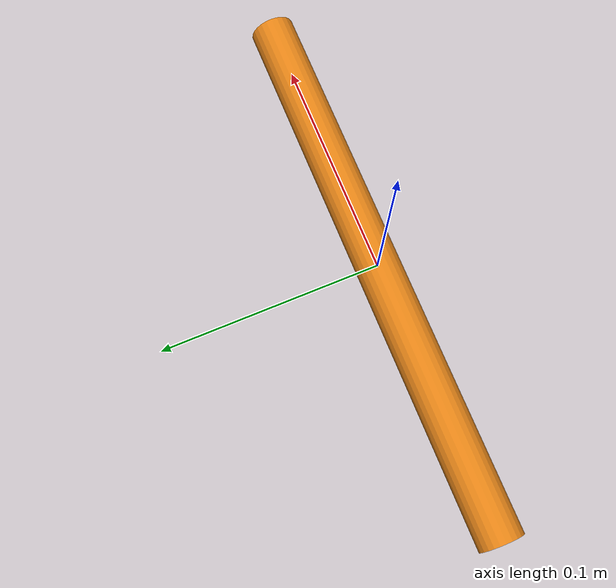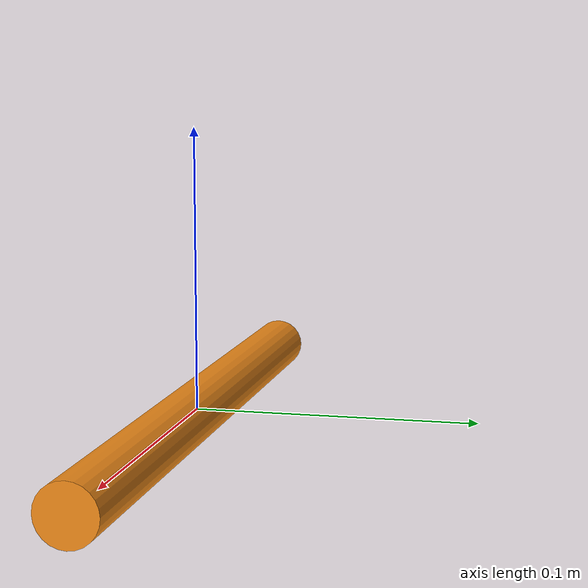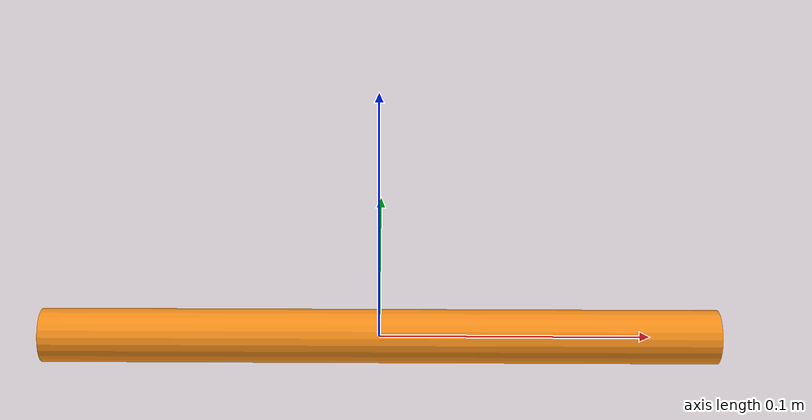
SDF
<?xml version="1.0"?>

<sdf version="1.5">
  <model name="hose">
    <static>false</static>
    <link name="link0">
      <collision name="collision">
        <pose>0 0 0 0 1.57 0</pose>
        <geometry>
          <cylinder>
            <radius>0.01</radius>
            <length>0.25</length>
          </cylinder>
        </geometry>
        <surface>
          <friction>
            <ode>
              <mu>0.9</mu>
              <mu2>0.9</mu2>
            </ode>
          </friction>
        </surface>
      </collision>

      <visual name="visual">
        <pose>0 0 0 0 1.57 0</pose>
        <geometry>
          <cylinder>
            <radius>0.01</radius>
            <length>0.25</length>
          </cylinder>
        </geometry>
        <material>
          <script>
            <uri>file://media/materials/scripts/gazebo.material</uri>
            <name>Gazebo/Orange</name>
          </script>
        </material>
      </visual>

      <inertial>
        <pose>0 0 0 0 1.57 0</pose>
        <mass>0.1</mass>
        <inertia>
          <ixx>0.0005233</ixx>
          <ixy>0.0</ixy>
          <ixz>0.0</ixz>
          <iyy>0.0005233</iyy>
          <iyz>0.0</iyz>
          <izz>0.0000005</izz>
        </inertia>
      </inertial>

    </link>
  </model>
</sdf>
